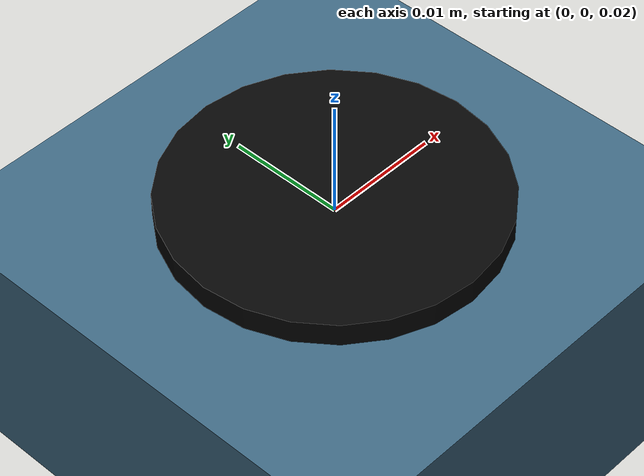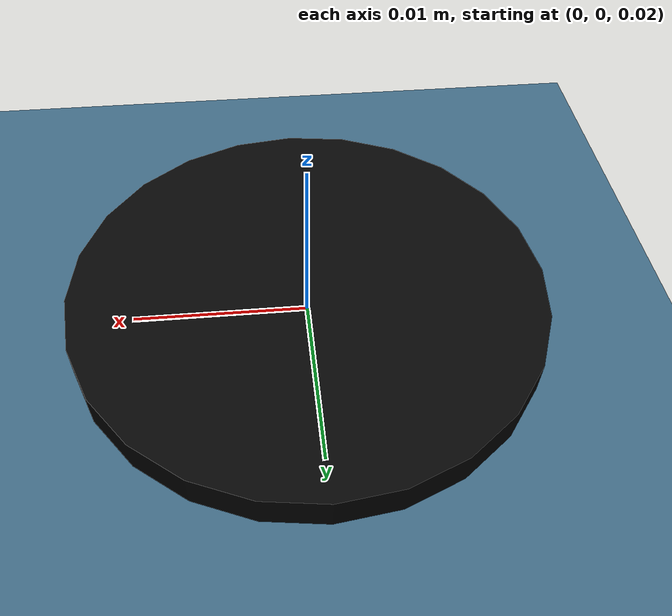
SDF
<?xml version="1.0"?>
<sdf version="1.9">
  <model name="target_plate">
    <static>true</static>
    <link name="plate_link">
      <!-- 180 mm square, 20 mm thick target plate with a 27 mm nominal hole for a 25 mm peg. -->
      <pose>0 0 0.01 0 0 0</pose>

      <collision name="target_plate_collision">
        <pose>0 0.054 0 0 0 0</pose>
        <geometry><box><size>0.18 0.072 0.02</size></box></geometry>
      </collision>
      <collision name="plate_rear_collision">
        <pose>0 -0.054 0 0 0 0</pose>
        <geometry><box><size>0.18 0.072 0.02</size></box></geometry>
      </collision>
      <collision name="plate_left_collision">
        <pose>-0.054 0 0 0 0 0</pose>
        <geometry><box><size>0.072 0.036 0.02</size></box></geometry>
      </collision>
      <collision name="plate_right_collision">
        <pose>0.054 0 0 0 0 0</pose>
        <geometry><box><size>0.072 0.036 0.02</size></box></geometry>
      </collision>
      <sensor name="target_contact_sensor" type="contact">
        <always_on>true</always_on>
        <update_rate>100.0</update_rate>
        <topic>/gazebo/contacts/target</topic>
        <contact>
          <collision>target_plate_collision</collision>
          <collision>plate_rear_collision</collision>
          <collision>plate_left_collision</collision>
          <collision>plate_right_collision</collision>
        </contact>
      </sensor>

      <visual name="plate_visual">
        <geometry><box><size>0.18 0.18 0.02</size></box></geometry>
        <material>
          <ambient>0.18 0.28 0.36 1</ambient>
          <diffuse>0.24 0.40 0.50 1</diffuse>
          <specular>0.25 0.25 0.25 1</specular>
        </material>
      </visual>
      <visual name="hole_opening_visual">
        <pose>0 0 0.0105 0 0 0</pose>
        <geometry><cylinder><radius>0.0135</radius><length>0.003</length></cylinder></geometry>
        <material>
          <ambient>0.01 0.01 0.01 1</ambient>
          <diffuse>0.02 0.02 0.02 1</diffuse>
        </material>
      </visual>
    </link>
  </model>
</sdf>
